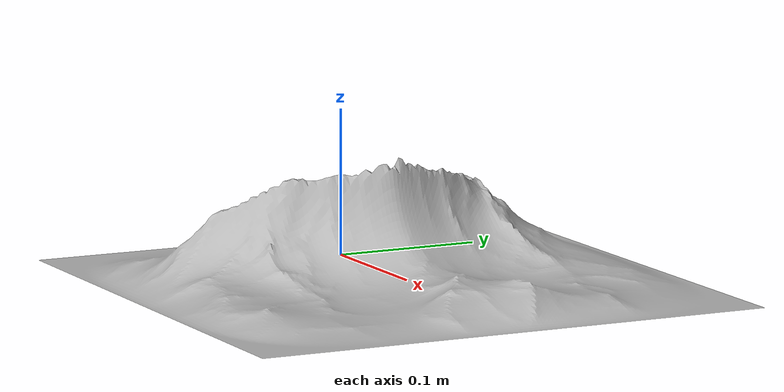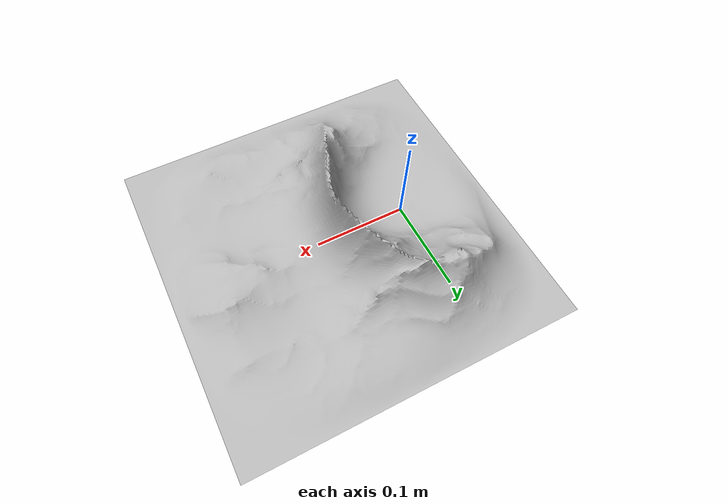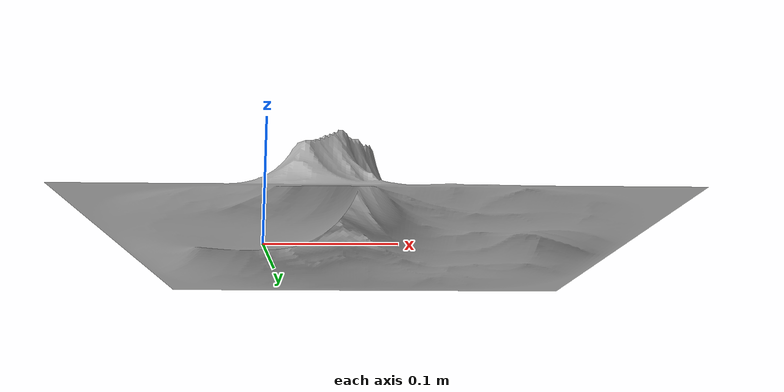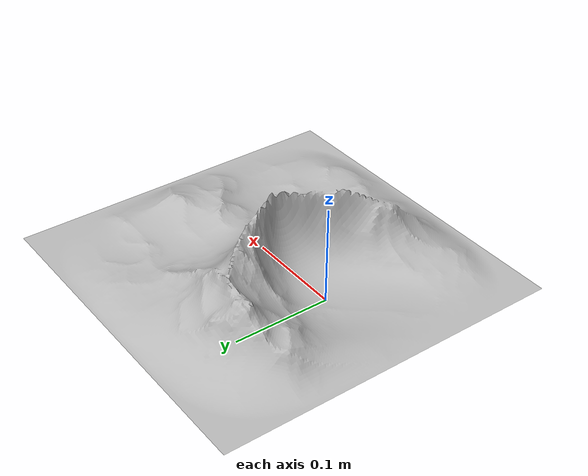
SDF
<?xml version="1.0" ?>
<sdf version="1.4">
  <model name="mountain">
    <static>true</static>
    <pose>0 0 0 1.57 0 0</pose>
    <link name="link">
      <collision name="collision">
        <geometry>
          <mesh>
            <uri>model://mountain/meshes/mountain.obj</uri>
            <scale>0.018 0.018 0.018</scale>
          </mesh>
        </geometry>
        <surface>
          <friction>
            <ode>
              <mu>2</mu>
              <mu2>0.01</mu2>
            </ode>
          </friction>
        </surface>
      </collision>
      <visual name="visual">
        <geometry>
          <mesh>
            <uri>model://mountain/meshes/mountain.obj</uri>
            <scale>0.018 0.018 0.018</scale>
          </mesh>
        </geometry>
        <material>
          <script>
            <uri>model://materials/scripts</uri>
          	<uri>model://materials/textures</uri>
          	<name>rock/floor</name>
          </script>
        </material>
      </visual>
    </link>
  </model>
</sdf>
